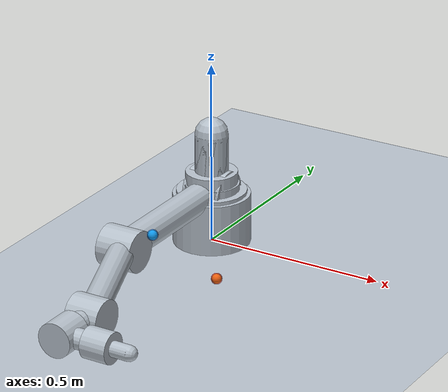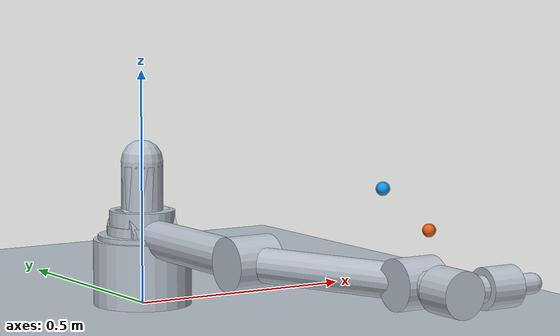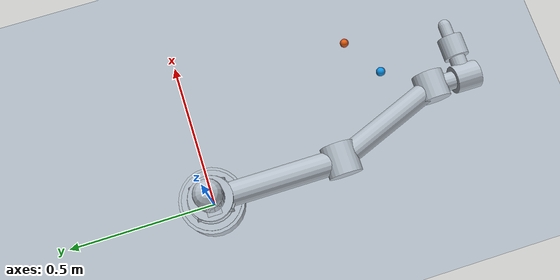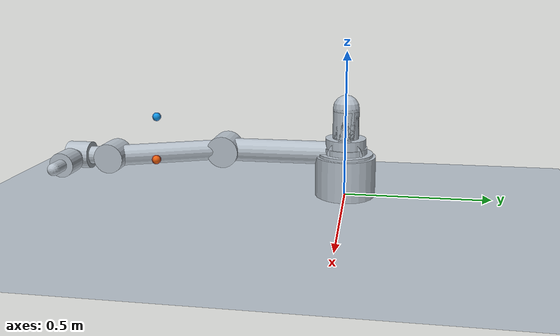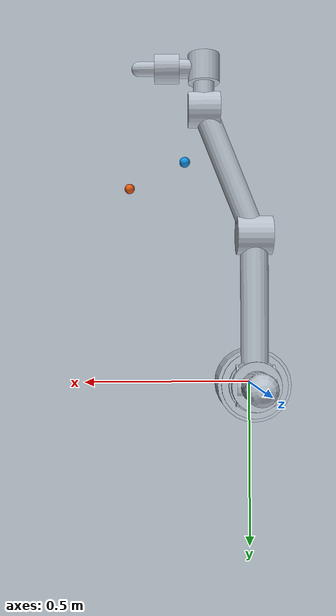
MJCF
<mujoco model="dobot_cr5_planning">
  <compiler angle="radian" autolimits="true" />

  <option timestep="0.002" gravity="0 0 -9.81" integrator="implicitfast" />

  <visual>
    <global offwidth="1280" offheight="960" />
  </visual>

  <default>
    <joint damping="2.0" armature="0.02" frictionloss="0.02" />
    <geom type="capsule" rgba="0.72 0.76 0.80 1" contype="0" conaffinity="0" group="1" />
    <site size="0.012" rgba="0.1 0.45 0.95 1" />
    <position kp="250" kv="18" forcerange="-120 120" />
  </default>

  <asset>
    <material name="base_mat" rgba="0.28 0.31 0.34 1" />
    <material name="link_mat" rgba="0.70 0.74 0.78 1" />
    <material name="joint_mat" rgba="0.12 0.14 0.16 1" />
    <material name="tool_mat" rgba="0.15 0.42 0.86 1" />
    <texture name="grid" type="2d" builtin="checker" rgb1="0.88 0.88 0.86" rgb2="0.72 0.74 0.76" width="512" height="512" />
    <material name="floor_mat" texture="grid" texrepeat="4 4" reflectance="0.15" />
  <material name="collision_mat" rgba="0.10 0.95 0.35 0.18" /></asset>

  <worldbody>
    <light name="key" pos="1.5 -2.0 2.5" dir="-1 1 -1" diffuse="0.8 0.8 0.8" />
    <geom name="floor" type="plane" size="1.8 1.8 0.02" material="floor_mat" contype="0" conaffinity="0" group="1" />
    <body name="target_marker" mocap="true" pos="0.35 -0.55 0.20">
      <geom name="target_sphere" type="sphere" size="0.014" rgba="0.95 0.18 0.12 0.65" contype="1" conaffinity="1" group="2" />
      <site name="target_site" pos="0 0 0" size="0.012" rgba="1 0.85 0.05 1" />
    </body>
    <body name="target_marker_b" mocap="true" pos="0.20 -0.60 0.30">
      <geom name="target_sphere_b" type="sphere" size="0.014" rgba="0.12 0.50 0.95 0.65" contype="1" conaffinity="1" group="2" />
      <site name="target_site_b" pos="0 0 0" size="0.012" rgba="0.05 0.90 1 1" />
    </body>

    <body name="base_link" pos="0 0 0">
      <geom name="base_column" type="cylinder" size="0.105 0.07" pos="0 0 0.07" material="base_mat" contype="0" conaffinity="0" group="1" />
      <geom name="base_top" type="cylinder" size="0.075 0.025" pos="0 0 0.145" material="joint_mat" contype="0" conaffinity="0" group="1" />

      <body name="Link1" pos="0 0 0.147">
        <joint name="joint1" type="hinge" axis="0 0 1" range="-3.14 3.14" />
        <geom name="link1_joint" type="cylinder" size="0.070 0.055" pos="0 0 0" material="joint_mat" contype="0" conaffinity="0" group="1" />
        <geom name="link1_body" fromto="0 0 0.03 0 0 0.16" size="0.045" material="link_mat" contype="0" conaffinity="0" group="1" />

        <body name="Link2" pos="0 0 0" euler="1.5708 1.5708 0">
          <joint name="joint2" type="hinge" axis="0 0 1" range="-3.14 3.14" />
          <geom name="link2_joint" type="cylinder" size="0.060 0.055" pos="0 0 0" material="joint_mat" contype="0" conaffinity="0" group="1" />
          <geom name="link2_arm" fromto="0 0 0 -0.427 0 0" size="0.040" material="link_mat" contype="0" conaffinity="0" group="1" />

          <body name="Link3" pos="-0.427 0 0">
            <joint name="joint3" type="hinge" axis="0 0 1" range="-2.86 2.86" />
            <geom name="link3_joint" type="cylinder" size="0.055 0.050" pos="0 0 0" material="joint_mat" contype="0" conaffinity="0" group="1" />
            <geom name="link3_arm" fromto="0 0 0 -0.357 0 0.141" size="0.035" material="link_mat" contype="0" conaffinity="0" group="1" />

            <body name="Link4" pos="-0.357 0 0.141" euler="0 0 -1.5708">
              <joint name="joint4" type="hinge" axis="0 0 1" range="-3.14 3.14" />
              <geom name="link4_joint" type="cylinder" size="0.050 0.045" pos="0 0 0" material="joint_mat" contype="0" conaffinity="0" group="1" />
              <geom name="link4_body" fromto="0 0 0 0 -0.116 0" size="0.030" material="link_mat" contype="0" conaffinity="0" group="1" />

              <body name="Link5" pos="0 -0.116 0" euler="1.5708 0 0">
                <joint name="joint5" type="hinge" axis="0 0 1" range="-3.14 3.14" />
                <geom name="link5_joint" type="cylinder" size="0.045 0.040" pos="0 0 0" material="joint_mat" contype="0" conaffinity="0" group="1" />
                <geom name="link5_body" fromto="0 0 0 0 0.105 0" size="0.026" material="link_mat" contype="0" conaffinity="0" group="1" />

                <body name="Link6" pos="0 0.105 0" euler="-1.5708 0 0">
                  <joint name="joint6" type="hinge" axis="0 0 1" range="-6.28 6.28" />
                  <geom name="link6_joint" type="cylinder" size="0.040 0.035" pos="0 0 0" material="joint_mat" contype="0" conaffinity="0" group="1" />
                  <geom name="tool_stub" fromto="0 0 0 0 0 0.08" size="0.020" material="tool_mat" contype="0" conaffinity="0" group="1" />
                  <site name="tool0" pos="0 0 0.08" quat="1 0 0 0" />
                <geom name="collision_tool" type="capsule" fromto="0 0 0 0 0 0.08" size="0.020" material="collision_mat" contype="1" conaffinity="1" group="2" /></body>
              <geom name="collision_link5" type="capsule" fromto="0 0 0 0 0.105 0" size="0.026" material="collision_mat" contype="1" conaffinity="1" group="2" /></body>
            <geom name="collision_link4" type="capsule" fromto="0 0 0 0 -0.116 0" size="0.030" material="collision_mat" contype="1" conaffinity="1" group="2" /></body>
          <geom name="collision_link3" type="capsule" fromto="0 0 0 -0.357 0 0.141" size="0.035" material="collision_mat" contype="1" conaffinity="1" group="2" /></body>
        <geom name="collision_link2" type="capsule" fromto="0 0 0 -0.427 0 0" size="0.040" material="collision_mat" contype="1" conaffinity="1" group="2" /></body>
      <geom name="collision_link1" type="capsule" fromto="0 0 0.025 0 0 0.150" size="0.045" material="collision_mat" contype="1" conaffinity="1" group="2" /></body>
    <geom name="collision_base" type="cylinder" size="0.095 0.075" pos="0 0 0.075" material="collision_mat" contype="1" conaffinity="1" group="2" /></body>
  <geom name="floor_collision" type="plane" pos="0 0 0" size="1.8 1.8 0.02" rgba="0.2 0.7 0.2 0.20" contype="1" conaffinity="1" group="2" /></worldbody>

  <actuator>
    <position name="joint1_position" joint="joint1" ctrlrange="-3.14 3.14" />
    <position name="joint2_position" joint="joint2" ctrlrange="-3.14 3.14" />
    <position name="joint3_position" joint="joint3" ctrlrange="-2.86 2.86" />
    <position name="joint4_position" joint="joint4" ctrlrange="-3.14 3.14" />
    <position name="joint5_position" joint="joint5" ctrlrange="-3.14 3.14" />
    <position name="joint6_position" joint="joint6" ctrlrange="-6.28 6.28" />
  </actuator>

  <keyframe>
    <key name="home" qpos="0 0 0 0 0 0" ctrl="0 0 0 0 0 0" />
    <key name="ready" qpos="0 -0.6 0.85 0 -0.8 0" ctrl="0 -0.6 0.85 0 -0.8 0" />
  </keyframe>
</mujoco>
